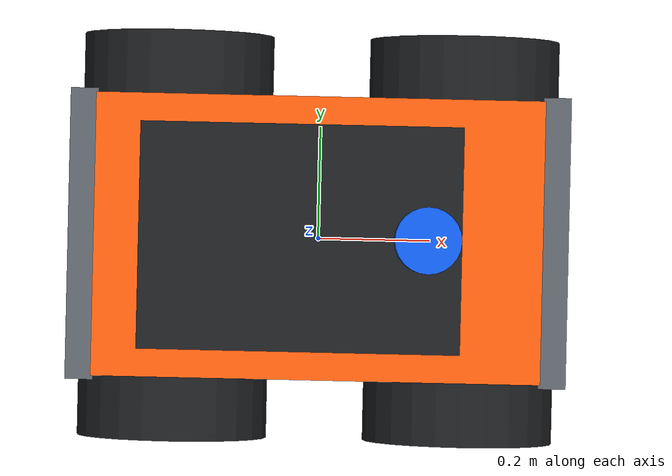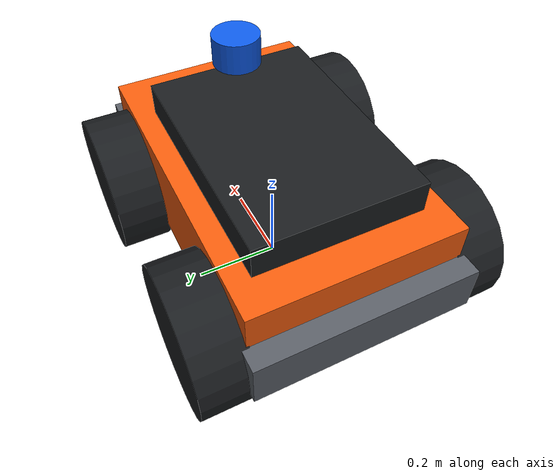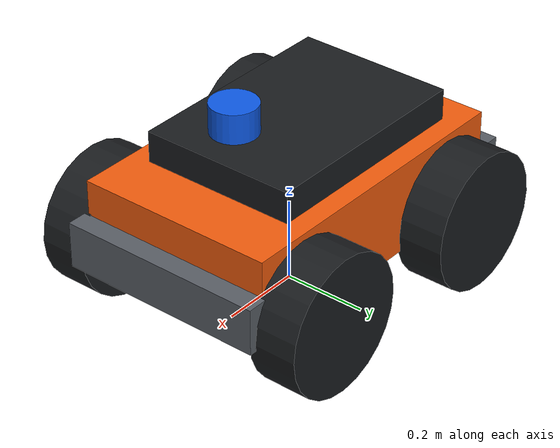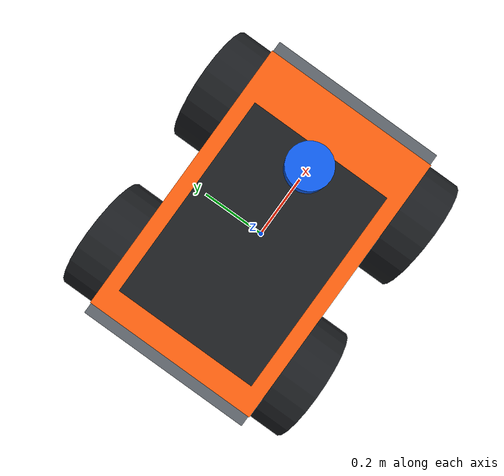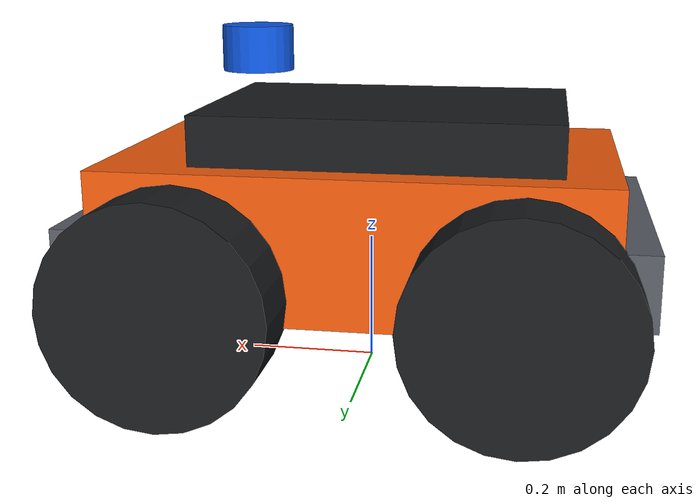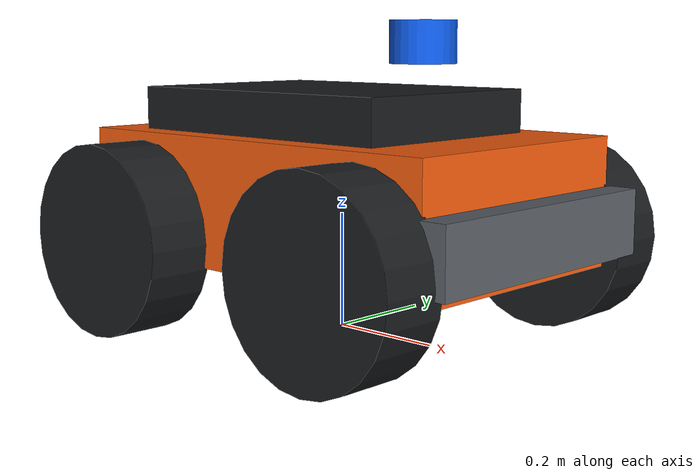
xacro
<?xml version="1.0"?>
<robot name="ranger_mini_proxy" xmlns:xacro="http://www.ros.org/wiki/xacro">
  <!--
    用途边界：这是用于感知/控制接口闭环的轻量 Ranger Mini 代理模型，
    不是轮胎受力、四轮转向执行器或 CAN 底盘的高保真模型。
    轴距、轮距和轮半径近似参考公开 Ranger Mini V2 模型。
  -->
  <!-- ===== 全局几何参数（单位 m） ===== -->
  <xacro:property name="rm_pi" value="3.141592653589793"/>
  <xacro:property name="wheelbase" value="0.498"/>
  <xacro:property name="track" value="0.583"/>
  <xacro:property name="wheel_radius" value="0.165"/>
  <xacro:property name="wheel_width" value="0.116"/>

  <!-- ===== 仿真雷达视场参数 =====
       水平按实车需求限制为车头前方 180°。
       垂直只保留原 38.4°视场的上半部分，即从水平面 0°向上扫描到 +19.2°；
       这里使用规则角度网格近似覆盖范围，不复刻 Livox 非重复扫描轨迹。 -->
  <xacro:property name="lidar_horizontal_fov" value="${rm_pi}"/>
  <xacro:property name="lidar_upward_fov" value="${19.2 * rm_pi / 180.0}"/>
  <xacro:property name="lidar_horizontal_samples" value="361"/>
  <!-- 0°、2.4°……19.2°共 9 层，与之前双向 17 层的角间隔一致。 -->
  <xacro:property name="lidar_vertical_samples" value="9"/>

  <!-- ===== RViz/Gazebo 可视材质；材质不影响碰撞和动力学 ===== -->
  <material name="agilex_orange">
    <color rgba="0.95 0.36 0.05 1.0"/>
  </material>
  <material name="dark_grey">
    <color rgba="0.10 0.11 0.12 1.0"/>
  </material>
  <material name="metal_grey">
    <color rgba="0.35 0.37 0.40 1.0"/>
  </material>
  <material name="laser_blue">
    <color rgba="0.05 0.35 0.90 1.0"/>
  </material>

  <!--
    生成均匀长方体惯量：
    Ixx=m(y²+z²)/12，Iyy=m(x²+z²)/12，Izz=m(x²+y²)/12。
    视觉/碰撞几何可以有偏移，惯量原点仍相对所属 link 原点。
  -->
  <xacro:macro name="box_inertia" params="mass x y z">
    <inertial>
      <mass value="${mass}"/>
      <origin xyz="0 0 0"/>
      <inertia ixx="${mass * (y*y + z*z) / 12.0}" ixy="0" ixz="0"
               iyy="${mass * (x*x + z*z) / 12.0}" iyz="0"
               izz="${mass * (x*x + y*y) / 12.0}"/>
    </inertial>
  </xacro:macro>

  <!--
    四个车轮共用宏，name 决定 link/joint 名，x/y 决定相对 base_link 的轮心位置。
    车轮目前是 fixed joint：外形和碰撞体有效，但不模拟真实转向角/滚动速度。
  -->
  <xacro:macro name="wheel" params="name x y">
    <link name="${name}_wheel_link">
      <inertial>
        <mass value="2.0"/>
        <origin xyz="0 0 0"/>
        <inertia ixx="0.015" ixy="0" ixz="0" iyy="0.028" iyz="0" izz="0.015"/>
      </inertial>
      <!-- URDF cylinder 默认轴沿 z，绕 x 旋转 90°后轮轴沿车体 y。 -->
      <visual>
        <origin rpy="${rm_pi/2.0} 0 0"/>
        <geometry>
          <cylinder radius="${wheel_radius}" length="${wheel_width}"/>
        </geometry>
        <material name="dark_grey"/>
      </visual>
      <collision>
        <origin rpy="${rm_pi/2.0} 0 0"/>
        <geometry>
          <cylinder radius="${wheel_radius}" length="${wheel_width}"/>
        </geometry>
      </collision>
    </link>
    <joint name="${name}_wheel_joint" type="fixed">
      <parent link="base_link"/>
      <child link="${name}_wheel_link"/>
      <origin xyz="${x} ${y} ${wheel_radius}"/>
    </joint>
    <!-- 较低摩擦减少固定轮方向对理想平面插件的干扰。 -->
    <gazebo reference="${name}_wheel_link">
      <mu1>0.2</mu1>
      <mu2>0.2</mu2>
      <material>Gazebo/Black</material>
    </gazebo>
  </xacro:macro>

  <!-- ===== 车体坐标树 =====
       base_footprint 是地面投影，Gazebo odom TF 指向它；base_link 与其原点重合。 -->
  <link name="base_footprint"/>
  <joint name="base_footprint_joint" type="fixed">
    <parent link="base_footprint"/>
    <child link="base_link"/>
    <origin xyz="0 0 0"/>
  </joint>

  <!-- base_link 承载车身惯量、显示外壳和主体碰撞盒。 -->
  <link name="base_link">
    <xacro:box_inertia mass="48.0" x="0.76" y="0.48" z="0.22"/>
    <visual name="lower_chassis">
      <origin xyz="0 0 0.235"/>
      <geometry><box size="0.76 0.48 0.22"/></geometry>
      <material name="agilex_orange"/>
    </visual>
    <visual name="upper_deck">
      <origin xyz="-0.03 0 0.375"/>
      <geometry><box size="0.54 0.38 0.09"/></geometry>
      <material name="dark_grey"/>
    </visual>
    <visual name="front_bumper">
      <origin xyz="0.405 0 0.205"/>
      <geometry><box size="0.05 0.50 0.11"/></geometry>
      <material name="metal_grey"/>
    </visual>
    <visual name="rear_bumper">
      <origin xyz="-0.405 0 0.205"/>
      <geometry><box size="0.05 0.50 0.11"/></geometry>
      <material name="metal_grey"/>
    </visual>
    <!-- 主体碰撞盒只近似车身；四个轮胎另有圆柱碰撞体，共同构成当前 3D footprint。 -->
    <collision>
      <origin xyz="0 0 0.235"/>
      <geometry><box size="0.76 0.48 0.22"/></geometry>
    </collision>
  </link>

  <!-- 轮位命名：front/rear 表示 x 正/负，left/right 表示 y 正/负。 -->
  <xacro:wheel name="front_left"  x="${ wheelbase/2.0}" y="${ track/2.0}"/>
  <xacro:wheel name="front_right" x="${ wheelbase/2.0}" y="${-track/2.0}"/>
  <xacro:wheel name="rear_left"   x="${-wheelbase/2.0}" y="${ track/2.0}"/>
  <xacro:wheel name="rear_right"  x="${-wheelbase/2.0}" y="${-track/2.0}"/>

  <!-- ===== 雷达代理 =====
       单个雷达位于车体前方 0.18 m、高 0.50 m；没有独立左后/右后雷达。 -->
  <link name="livox_frame">
    <xacro:box_inertia mass="0.5" x="0.09" y="0.09" z="0.07"/>
    <visual>
      <geometry><cylinder radius="0.055" length="0.07"/></geometry>
      <material name="laser_blue"/>
    </visual>
    <collision>
      <geometry><cylinder radius="0.055" length="0.07"/></geometry>
    </collision>
  </link>
  <joint name="livox_joint" type="fixed">
    <parent link="base_link"/>
    <child link="livox_frame"/>
    <origin xyz="0.18 0 0.50"/>
  </joint>

  <gazebo reference="base_link">
    <material>Gazebo/Orange</material>
  </gazebo>
  <gazebo reference="livox_frame">
    <material>Gazebo/Blue</material>
    <sensor type="ray" name="livox_proxy_fan_lidar">
      <always_on>true</always_on>
      <update_rate>10.0</update_rate>
      <visualize>true</visualize>
      <pose>0 0 0 0 0 0</pose>
      <ray>
        <scan>
          <horizontal>
            <samples>${lidar_horizontal_samples}</samples>
            <resolution>1</resolution>
            <min_angle>-${lidar_horizontal_fov / 2.0}</min_angle>
            <max_angle>${lidar_horizontal_fov / 2.0}</max_angle>
          </horizontal>
          <vertical>
            <samples>${lidar_vertical_samples}</samples>
            <resolution>1</resolution>
            <min_angle>0.0</min_angle>
            <max_angle>${lidar_upward_fov}</max_angle>
          </vertical>
        </scan>
        <range>
          <min>0.08</min>
          <max>12.0</max>
          <resolution>0.01</resolution>
        </range>
        <!-- 3 mm 标准差的高斯噪声用于避免测试只覆盖完全理想直线。 -->
        <noise>
          <type>gaussian</type>
          <mean>0.0</mean>
          <stddev>0.003</stddev>
        </noise>
      </ray>
      <plugin name="gazebo_ros_livox_fan_proxy" filename="libgazebo_ros_block_laser.so">
        <robotNamespace>/</robotNamespace>
        <!-- 插件输出 sensor_msgs/PointCloud；桥接后才成为 /livox/lidar PointCloud2。 -->
        <topicName>sim_livox_points</topicName>
        <frameName>livox_frame</frameName>
        <!-- 射线本体已配置 3 mm 噪声，此处不再重复叠加。 -->
        <gaussianNoise>0.0</gaussianNoise>
        <updateRate>10.0</updateRate>
      </plugin>
    </sensor>
  </gazebo>

  <!--
    ===== 理想平面底盘 =====
    插件直接接收 Twist 的 vx/vy/wz 并发布 /odom；0.5 s 收不到命令会停。
    这种模型可验证居中和航向算法，但不能证明真实 Ranger Mini 已完成楔形轮转向。
  -->
  <gazebo>
    <plugin name="ranger_mini_planar_drive" filename="libgazebo_ros_planar_move.so">
      <robotNamespace>/</robotNamespace>
      <commandTopic>cmd_vel</commandTopic>
      <odometryTopic>odom</odometryTopic>
      <odometryFrame>odom</odometryFrame>
      <robotBaseFrame>base_footprint</robotBaseFrame>
      <odometryRate>50.0</odometryRate>
      <cmdTimeout>0.5</cmdTimeout>
    </plugin>
  </gazebo>
</robot>
